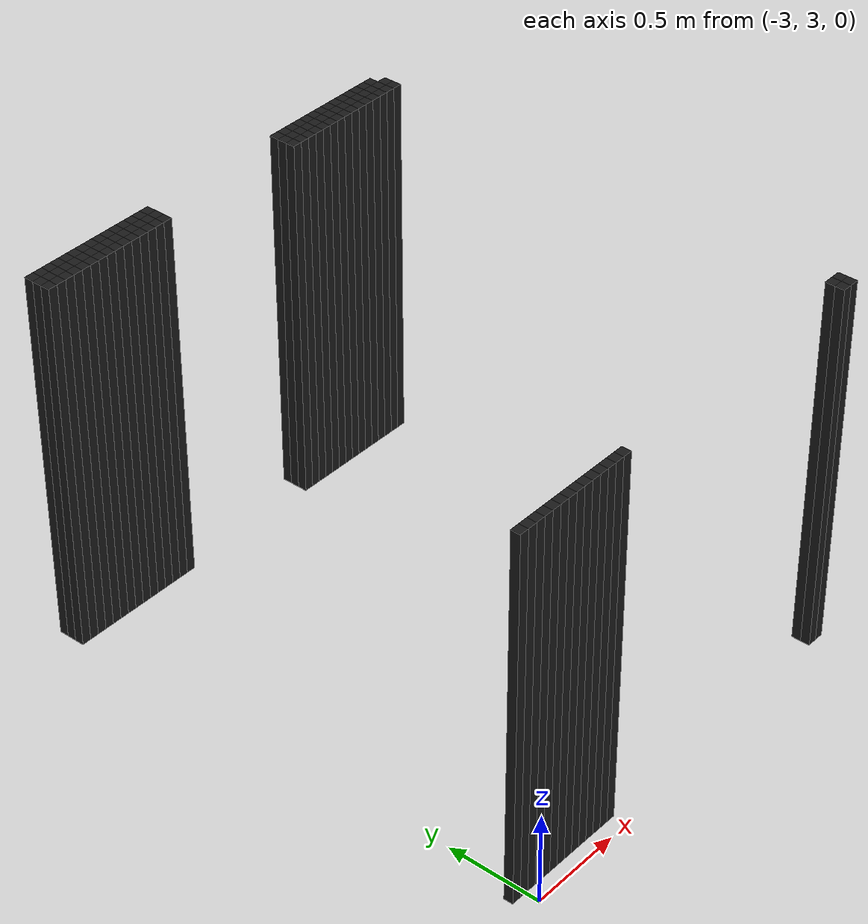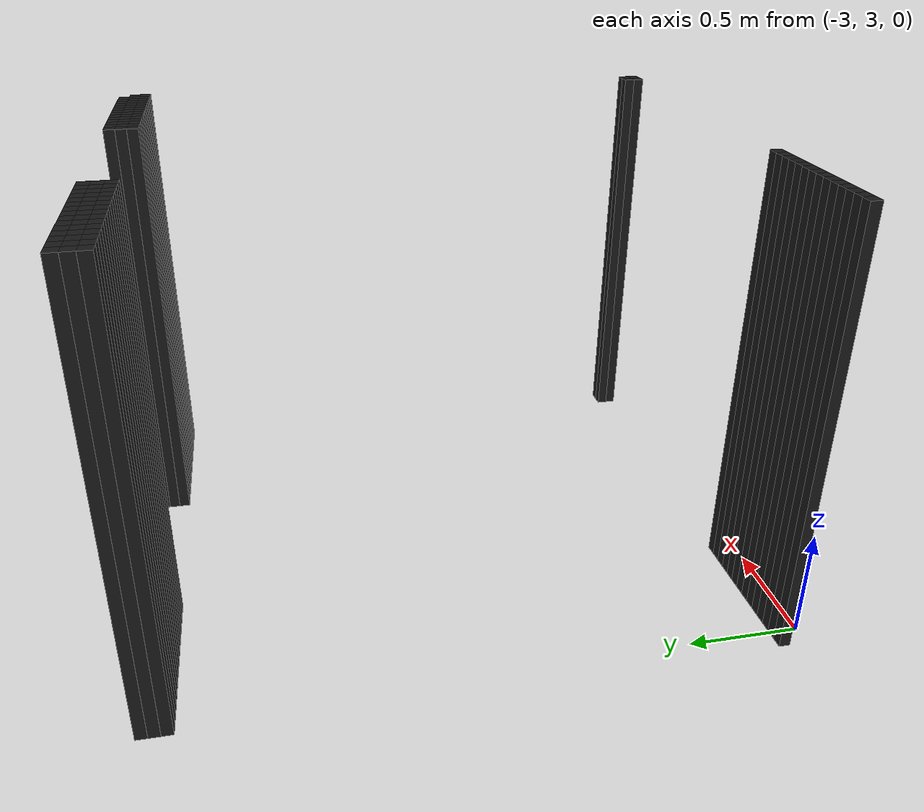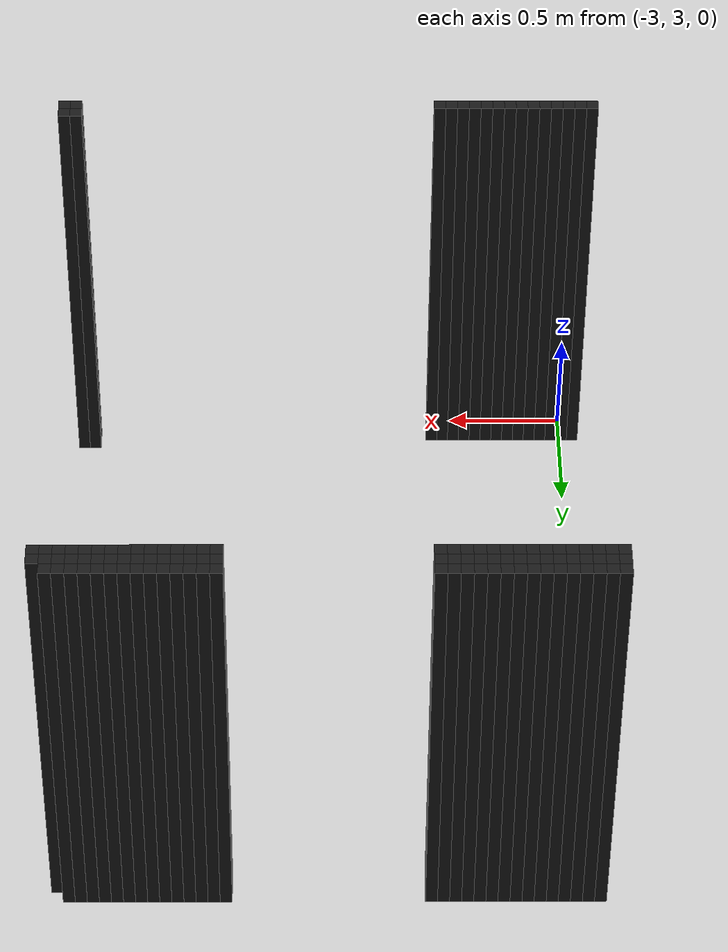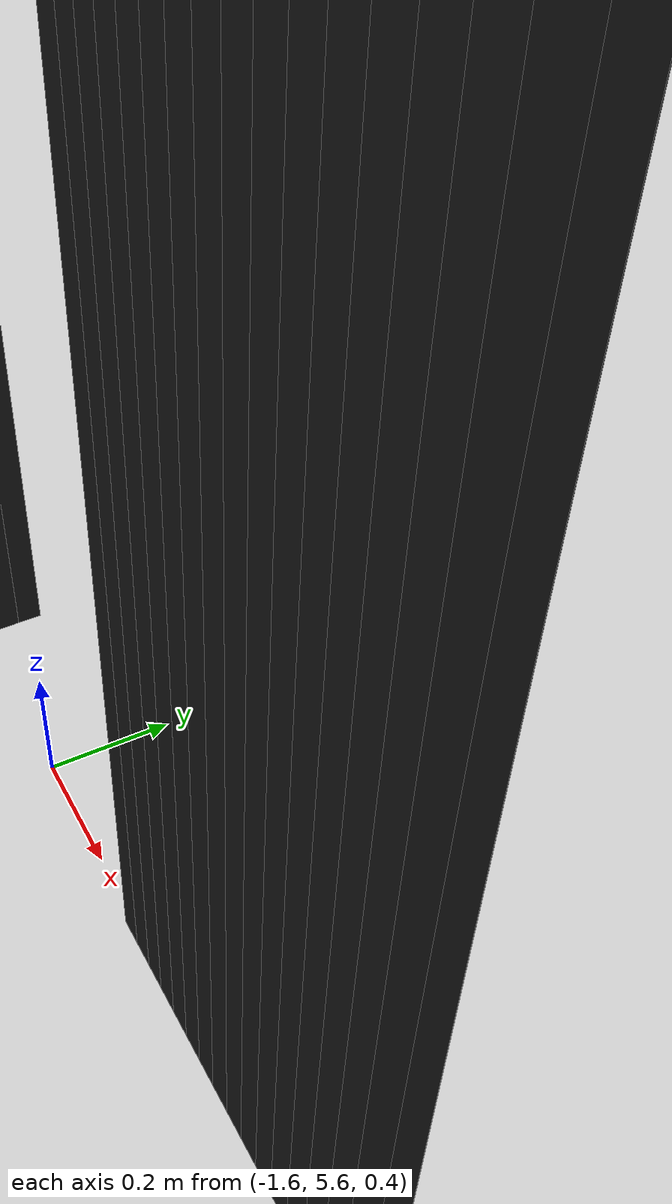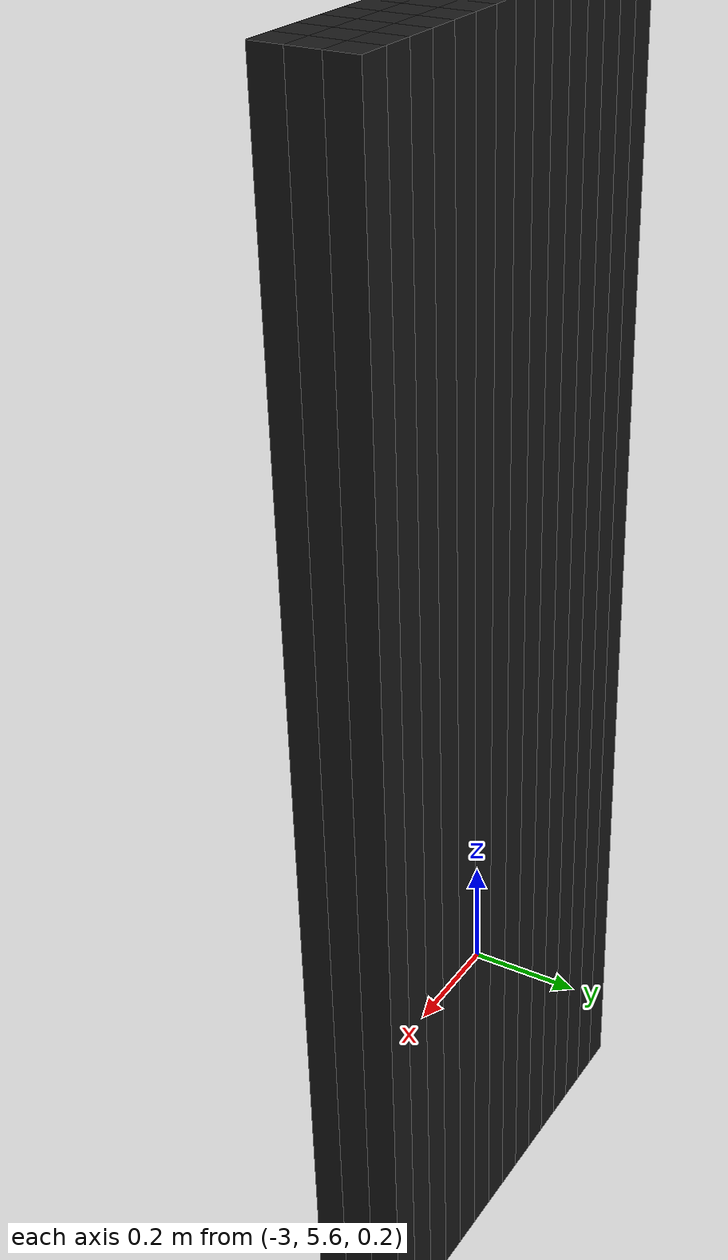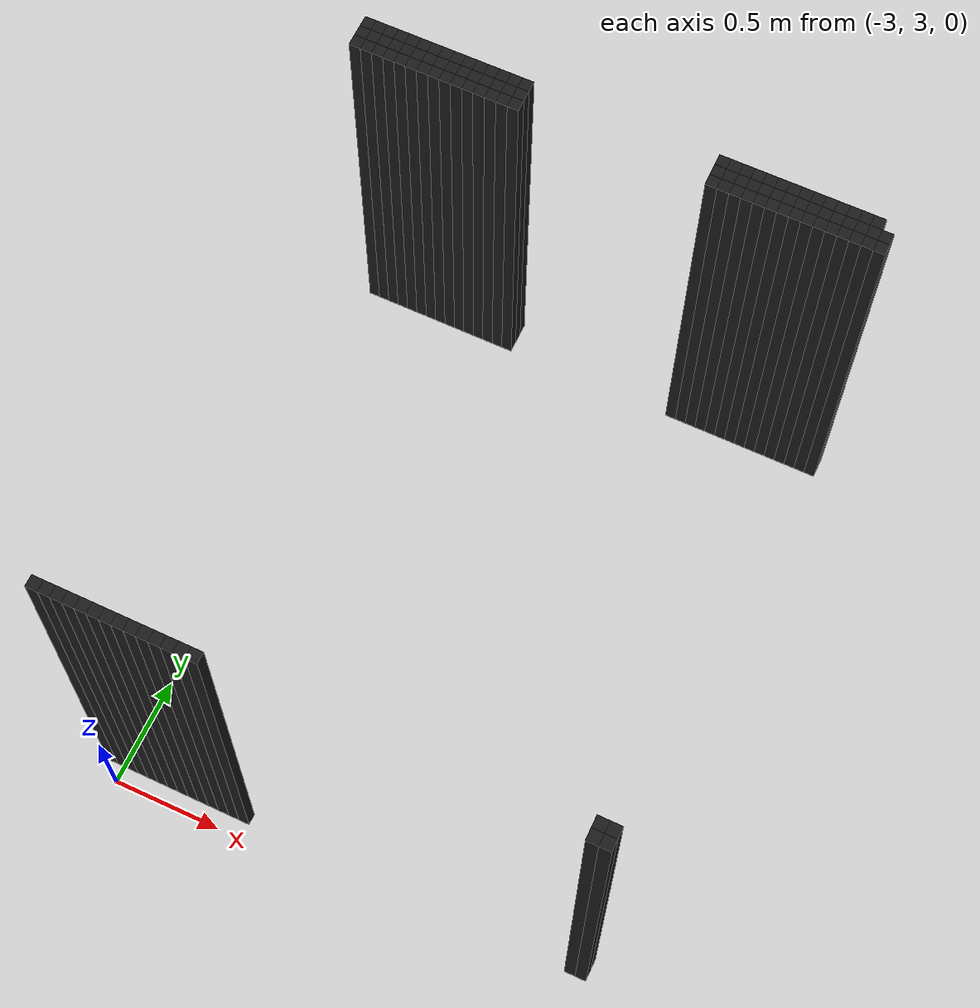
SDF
<sdf version="1.6">
 <model name="obstacle_29_51">
  <pose>-3.0599999999999996 5.8 1.0 0 0 0</pose>
  <static>true</static>
  <link name="box_link">
   <collision name="box_collision"><geometry><box><size>0.05 0.05 2.0</size></box></geometry></collision>
   <visual name="box_visual">
    <geometry><box><size>0.05 0.05 2.0</size></box></geometry>
    <material><ambient>0 0 0 1</ambient><diffuse>0.1 0.1 0.1 1</diffuse></material>
   </visual>
  </link>
 </model>
 <model name="obstacle_30_51">
  <pose>-3.01 5.8 1.0 0 0 0</pose>
  <static>true</static>
  <link name="box_link">
   <collision name="box_collision"><geometry><box><size>0.05 0.05 2.0</size></box></geometry></collision>
   <visual name="box_visual">
    <geometry><box><size>0.05 0.05 2.0</size></box></geometry>
    <material><ambient>0 0 0 1</ambient><diffuse>0.1 0.1 0.1 1</diffuse></material>
   </visual>
  </link>
 </model>
 <model name="obstacle_31_51">
  <pose>-2.96 5.8 1.0 0 0 0</pose>
  <static>true</static>
  <link name="box_link">
   <collision name="box_collision"><geometry><box><size>0.05 0.05 2.0</size></box></geometry></collision>
   <visual name="box_visual">
    <geometry><box><size>0.05 0.05 2.0</size></box></geometry>
    <material><ambient>0 0 0 1</ambient><diffuse>0.1 0.1 0.1 1</diffuse></material>
   </visual>
  </link>
 </model>
 <model name="obstacle_32_51">
  <pose>-2.9099999999999997 5.8 1.0 0 0 0</pose>
  <static>true</static>
  <link name="box_link">
   <collision name="box_collision"><geometry><box><size>0.05 0.05 2.0</size></box></geometry></collision>
   <visual name="box_visual">
    <geometry><box><size>0.05 0.05 2.0</size></box></geometry>
    <material><ambient>0 0 0 1</ambient><diffuse>0.1 0.1 0.1 1</diffuse></material>
   </visual>
  </link>
 </model>
 <model name="obstacle_33_51">
  <pose>-2.8599999999999994 5.8 1.0 0 0 0</pose>
  <static>true</static>
  <link name="box_link">
   <collision name="box_collision"><geometry><box><size>0.05 0.05 2.0</size></box></geometry></collision>
   <visual name="box_visual">
    <geometry><box><size>0.05 0.05 2.0</size></box></geometry>
    <material><ambient>0 0 0 1</ambient><diffuse>0.1 0.1 0.1 1</diffuse></material>
   </visual>
  </link>
 </model>
 <model name="obstacle_34_51">
  <pose>-2.8099999999999996 5.8 1.0 0 0 0</pose>
  <static>true</static>
  <link name="box_link">
   <collision name="box_collision"><geometry><box><size>0.05 0.05 2.0</size></box></geometry></collision>
   <visual name="box_visual">
    <geometry><box><size>0.05 0.05 2.0</size></box></geometry>
    <material><ambient>0 0 0 1</ambient><diffuse>0.1 0.1 0.1 1</diffuse></material>
   </visual>
  </link>
 </model>
 <model name="obstacle_35_51">
  <pose>-2.76 5.8 1.0 0 0 0</pose>
  <static>true</static>
  <link name="box_link">
   <collision name="box_collision"><geometry><box><size>0.05 0.05 2.0</size></box></geometry></collision>
   <visual name="box_visual">
    <geometry><box><size>0.05 0.05 2.0</size></box></geometry>
    <material><ambient>0 0 0 1</ambient><diffuse>0.1 0.1 0.1 1</diffuse></material>
   </visual>
  </link>
 </model>
 <model name="obstacle_36_51">
  <pose>-2.71 5.8 1.0 0 0 0</pose>
  <static>true</static>
  <link name="box_link">
   <collision name="box_collision"><geometry><box><size>0.05 0.05 2.0</size></box></geometry></collision>
   <visual name="box_visual">
    <geometry><box><size>0.05 0.05 2.0</size></box></geometry>
    <material><ambient>0 0 0 1</ambient><diffuse>0.1 0.1 0.1 1</diffuse></material>
   </visual>
  </link>
 </model>
 <model name="obstacle_37_51">
  <pose>-2.6599999999999997 5.8 1.0 0 0 0</pose>
  <static>true</static>
  <link name="box_link">
   <collision name="box_collision"><geometry><box><size>0.05 0.05 2.0</size></box></geometry></collision>
   <visual name="box_visual">
    <geometry><box><size>0.05 0.05 2.0</size></box></geometry>
    <material><ambient>0 0 0 1</ambient><diffuse>0.1 0.1 0.1 1</diffuse></material>
   </visual>
  </link>
 </model>
 <model name="obstacle_38_51">
  <pose>-2.6099999999999994 5.8 1.0 0 0 0</pose>
  <static>true</static>
  <link name="box_link">
   <collision name="box_collision"><geometry><box><size>0.05 0.05 2.0</size></box></geometry></collision>
   <visual name="box_visual">
    <geometry><box><size>0.05 0.05 2.0</size></box></geometry>
    <material><ambient>0 0 0 1</ambient><diffuse>0.1 0.1 0.1 1</diffuse></material>
   </visual>
  </link>
 </model>
 <model name="obstacle_39_51">
  <pose>-2.5599999999999996 5.8 1.0 0 0 0</pose>
  <static>true</static>
  <link name="box_link">
   <collision name="box_collision"><geometry><box><size>0.05 0.05 2.0</size></box></geometry></collision>
   <visual name="box_visual">
    <geometry><box><size>0.05 0.05 2.0</size></box></geometry>
    <material><ambient>0 0 0 1</ambient><diffuse>0.1 0.1 0.1 1</diffuse></material>
   </visual>
  </link>
 </model>
 <model name="obstacle_40_51">
  <pose>-2.51 5.8 1.0 0 0 0</pose>
  <static>true</static>
  <link name="box_link">
   <collision name="box_collision"><geometry><box><size>0.05 0.05 2.0</size></box></geometry></collision>
   <visual name="box_visual">
    <geometry><box><size>0.05 0.05 2.0</size></box></geometry>
    <material><ambient>0 0 0 1</ambient><diffuse>0.1 0.1 0.1 1</diffuse></material>
   </visual>
  </link>
 </model>
 <model name="obstacle_41_51">
  <pose>-2.4599999999999995 5.8 1.0 0 0 0</pose>
  <static>true</static>
  <link name="box_link">
   <collision name="box_collision"><geometry><box><size>0.05 0.05 2.0</size></box></geometry></collision>
   <visual name="box_visual">
    <geometry><box><size>0.05 0.05 2.0</size></box></geometry>
    <material><ambient>0 0 0 1</ambient><diffuse>0.1 0.1 0.1 1</diffuse></material>
   </visual>
  </link>
 </model>
 <model name="obstacle_42_51">
  <pose>-2.4099999999999997 5.8 1.0 0 0 0</pose>
  <static>true</static>
  <link name="box_link">
   <collision name="box_collision"><geometry><box><size>0.05 0.05 2.0</size></box></geometry></collision>
   <visual name="box_visual">
    <geometry><box><size>0.05 0.05 2.0</size></box></geometry>
    <material><ambient>0 0 0 1</ambient><diffuse>0.1 0.1 0.1 1</diffuse></material>
   </visual>
  </link>
 </model>
 <model name="obstacle_43_51">
  <pose>-2.36 5.8 1.0 0 0 0</pose>
  <static>true</static>
  <link name="box_link">
   <collision name="box_collision"><geometry><box><size>0.05 0.05 2.0</size></box></geometry></collision>
   <visual name="box_visual">
    <geometry><box><size>0.05 0.05 2.0</size></box></geometry>
    <material><ambient>0 0 0 1</ambient><diffuse>0.1 0.1 0.1 1</diffuse></material>
   </visual>
  </link>
 </model>
 <model name="obstacle_60_51">
  <pose>-1.5099999999999998 5.8 1.0 0 0 0</pose>
  <static>true</static>
  <link name="box_link">
   <collision name="box_collision"><geometry><box><size>0.05 0.05 2.0</size></box></geometry></collision>
   <visual name="box_visual">
    <geometry><box><size>0.05 0.05 2.0</size></box></geometry>
    <material><ambient>0 0 0 1</ambient><diffuse>0.1 0.1 0.1 1</diffuse></material>
   </visual>
  </link>
 </model>
 <model name="obstacle_61_51">
  <pose>-1.4599999999999995 5.8 1.0 0 0 0</pose>
  <static>true</static>
  <link name="box_link">
   <collision name="box_collision"><geometry><box><size>0.05 0.05 2.0</size></box></geometry></collision>
   <visual name="box_visual">
    <geometry><box><size>0.05 0.05 2.0</size></box></geometry>
    <material><ambient>0 0 0 1</ambient><diffuse>0.1 0.1 0.1 1</diffuse></material>
   </visual>
  </link>
 </model>
 <model name="obstacle_62_51">
  <pose>-1.4099999999999997 5.8 1.0 0 0 0</pose>
  <static>true</static>
  <link name="box_link">
   <collision name="box_collision"><geometry><box><size>0.05 0.05 2.0</size></box></geometry></collision>
   <visual name="box_visual">
    <geometry><box><size>0.05 0.05 2.0</size></box></geometry>
    <material><ambient>0 0 0 1</ambient><diffuse>0.1 0.1 0.1 1</diffuse></material>
   </visual>
  </link>
 </model>
 <model name="obstacle_63_51">
  <pose>-1.3599999999999994 5.8 1.0 0 0 0</pose>
  <static>true</static>
  <link name="box_link">
   <collision name="box_collision"><geometry><box><size>0.05 0.05 2.0</size></box></geometry></collision>
   <visual name="box_visual">
    <geometry><box><size>0.05 0.05 2.0</size></box></geometry>
    <material><ambient>0 0 0 1</ambient><diffuse>0.1 0.1 0.1 1</diffuse></material>
   </visual>
  </link>
 </model>
 <model name="obstacle_64_51">
  <pose>-1.3099999999999996 5.8 1.0 0 0 0</pose>
  <static>true</static>
  <link name="box_link">
   <collision name="box_collision"><geometry><box><size>0.05 0.05 2.0</size></box></geometry></collision>
   <visual name="box_visual">
    <geometry><box><size>0.05 0.05 2.0</size></box></geometry>
    <material><ambient>0 0 0 1</ambient><diffuse>0.1 0.1 0.1 1</diffuse></material>
   </visual>
  </link>
 </model>
 <model name="obstacle_65_51">
  <pose>-1.2599999999999998 5.8 1.0 0 0 0</pose>
  <static>true</static>
  <link name="box_link">
   <collision name="box_collision"><geometry><box><size>0.05 0.05 2.0</size></box></geometry></collision>
   <visual name="box_visual">
    <geometry><box><size>0.05 0.05 2.0</size></box></geometry>
    <material><ambient>0 0 0 1</ambient><diffuse>0.1 0.1 0.1 1</diffuse></material>
   </visual>
  </link>
 </model>
 <model name="obstacle_66_51">
  <pose>-1.2099999999999995 5.8 1.0 0 0 0</pose>
  <static>true</static>
  <link name="box_link">
   <collision name="box_collision"><geometry><box><size>0.05 0.05 2.0</size></box></geometry></collision>
   <visual name="box_visual">
    <geometry><box><size>0.05 0.05 2.0</size></box></geometry>
    <material><ambient>0 0 0 1</ambient><diffuse>0.1 0.1 0.1 1</diffuse></material>
   </visual>
  </link>
 </model>
 <model name="obstacle_67_51">
  <pose>-1.1599999999999997 5.8 1.0 0 0 0</pose>
  <static>true</static>
  <link name="box_link">
   <collision name="box_collision"><geometry><box><size>0.05 0.05 2.0</size></box></geometry></collision>
   <visual name="box_visual">
    <geometry><box><size>0.05 0.05 2.0</size></box></geometry>
    <material><ambient>0 0 0 1</ambient><diffuse>0.1 0.1 0.1 1</diffuse></material>
   </visual>
  </link>
 </model>
 <model name="obstacle_68_51">
  <pose>-1.1099999999999994 5.8 1.0 0 0 0</pose>
  <static>true</static>
  <link name="box_link">
   <collision name="box_collision"><geometry><box><size>0.05 0.05 2.0</size></box></geometry></collision>
   <visual name="box_visual">
    <geometry><box><size>0.05 0.05 2.0</size></box></geometry>
    <material><ambient>0 0 0 1</ambient><diffuse>0.1 0.1 0.1 1</diffuse></material>
   </visual>
  </link>
 </model>
 <model name="obstacle_69_51">
  <pose>-1.0599999999999996 5.8 1.0 0 0 0</pose>
  <static>true</static>
  <link name="box_link">
   <collision name="box_collision"><geometry><box><size>0.05 0.05 2.0</size></box></geometry></collision>
   <visual name="box_visual">
    <geometry><box><size>0.05 0.05 2.0</size></box></geometry>
    <material><ambient>0 0 0 1</ambient><diffuse>0.1 0.1 0.1 1</diffuse></material>
   </visual>
  </link>
 </model>
 <model name="obstacle_70_51">
  <pose>-1.0099999999999998 5.8 1.0 0 0 0</pose>
  <static>true</static>
  <link name="box_link">
   <collision name="box_collision"><geometry><box><size>0.05 0.05 2.0</size></box></geometry></collision>
   <visual name="box_visual">
    <geometry><box><size>0.05 0.05 2.0</size></box></geometry>
    <material><ambient>0 0 0 1</ambient><diffuse>0.1 0.1 0.1 1</diffuse></material>
   </visual>
  </link>
 </model>
 <model name="obstacle_71_51">
  <pose>-0.9599999999999995 5.8 1.0 0 0 0</pose>
  <static>true</static>
  <link name="box_link">
   <collision name="box_collision"><geometry><box><size>0.05 0.05 2.0</size></box></geometry></collision>
   <visual name="box_visual">
    <geometry><box><size>0.05 0.05 2.0</size></box></geometry>
    <material><ambient>0 0 0 1</ambient><diffuse>0.1 0.1 0.1 1</diffuse></material>
   </visual>
  </link>
 </model>
 <model name="obstacle_72_51">
  <pose>-0.9099999999999997 5.8 1.0 0 0 0</pose>
  <static>true</static>
  <link name="box_link">
   <collision name="box_collision"><geometry><box><size>0.05 0.05 2.0</size></box></geometry></collision>
   <visual name="box_visual">
    <geometry><box><size>0.05 0.05 2.0</size></box></geometry>
    <material><ambient>0 0 0 1</ambient><diffuse>0.1 0.1 0.1 1</diffuse></material>
   </visual>
  </link>
 </model>
 <model name="obstacle_73_51">
  <pose>-0.8599999999999994 5.8 1.0 0 0 0</pose>
  <static>true</static>
  <link name="box_link">
   <collision name="box_collision"><geometry><box><size>0.05 0.05 2.0</size></box></geometry></collision>
   <visual name="box_visual">
    <geometry><box><size>0.05 0.05 2.0</size></box></geometry>
    <material><ambient>0 0 0 1</ambient><diffuse>0.1 0.1 0.1 1</diffuse></material>
   </visual>
  </link>
 </model>
 <model name="obstacle_29_52">
  <pose>-3.0599999999999996 5.75 1.0 0 0 0</pose>
  <static>true</static>
  <link name="box_link">
   <collision name="box_collision"><geometry><box><size>0.05 0.05 2.0</size></box></geometry></collision>
   <visual name="box_visual">
    <geometry><box><size>0.05 0.05 2.0</size></box></geometry>
    <material><ambient>0 0 0 1</ambient><diffuse>0.1 0.1 0.1 1</diffuse></material>
   </visual>
  </link>
 </model>
 <model name="obstacle_30_52">
  <pose>-3.01 5.75 1.0 0 0 0</pose>
  <static>true</static>
  <link name="box_link">
   <collision name="box_collision"><geometry><box><size>0.05 0.05 2.0</size></box></geometry></collision>
   <visual name="box_visual">
    <geometry><box><size>0.05 0.05 2.0</size></box></geometry>
    <material><ambient>0 0 0 1</ambient><diffuse>0.1 0.1 0.1 1</diffuse></material>
   </visual>
  </link>
 </model>
 <model name="obstacle_31_52">
  <pose>-2.96 5.75 1.0 0 0 0</pose>
  <static>true</static>
  <link name="box_link">
   <collision name="box_collision"><geometry><box><size>0.05 0.05 2.0</size></box></geometry></collision>
   <visual name="box_visual">
    <geometry><box><size>0.05 0.05 2.0</size></box></geometry>
    <material><ambient>0 0 0 1</ambient><diffuse>0.1 0.1 0.1 1</diffuse></material>
   </visual>
  </link>
 </model>
 <model name="obstacle_32_52">
  <pose>-2.9099999999999997 5.75 1.0 0 0 0</pose>
  <static>true</static>
  <link name="box_link">
   <collision name="box_collision"><geometry><box><size>0.05 0.05 2.0</size></box></geometry></collision>
   <visual name="box_visual">
    <geometry><box><size>0.05 0.05 2.0</size></box></geometry>
    <material><ambient>0 0 0 1</ambient><diffuse>0.1 0.1 0.1 1</diffuse></material>
   </visual>
  </link>
 </model>
 <model name="obstacle_33_52">
  <pose>-2.8599999999999994 5.75 1.0 0 0 0</pose>
  <static>true</static>
  <link name="box_link">
   <collision name="box_collision"><geometry><box><size>0.05 0.05 2.0</size></box></geometry></collision>
   <visual name="box_visual">
    <geometry><box><size>0.05 0.05 2.0</size></box></geometry>
    <material><ambient>0 0 0 1</ambient><diffuse>0.1 0.1 0.1 1</diffuse></material>
   </visual>
  </link>
 </model>
 <model name="obstacle_34_52">
  <pose>-2.8099999999999996 5.75 1.0 0 0 0</pose>
  <static>true</static>
  <link name="box_link">
   <collision name="box_collision"><geometry><box><size>0.05 0.05 2.0</size></box></geometry></collision>
   <visual name="box_visual">
    <geometry><box><size>0.05 0.05 2.0</size></box></geometry>
    <material><ambient>0 0 0 1</ambient><diffuse>0.1 0.1 0.1 1</diffuse></material>
   </visual>
  </link>
 </model>
 <model name="obstacle_35_52">
  <pose>-2.76 5.75 1.0 0 0 0</pose>
  <static>true</static>
  <link name="box_link">
   <collision name="box_collision"><geometry><box><size>0.05 0.05 2.0</size></box></geometry></collision>
   <visual name="box_visual">
    <geometry><box><size>0.05 0.05 2.0</size></box></geometry>
    <material><ambient>0 0 0 1</ambient><diffuse>0.1 0.1 0.1 1</diffuse></material>
   </visual>
  </link>
 </model>
 <model name="obstacle_36_52">
  <pose>-2.71 5.75 1.0 0 0 0</pose>
  <static>true</static>
  <link name="box_link">
   <collision name="box_collision"><geometry><box><size>0.05 0.05 2.0</size></box></geometry></collision>
   <visual name="box_visual">
    <geometry><box><size>0.05 0.05 2.0</size></box></geometry>
    <material><ambient>0 0 0 1</ambient><diffuse>0.1 0.1 0.1 1</diffuse></material>
   </visual>
  </link>
 </model>
 <model name="obstacle_37_52">
  <pose>-2.6599999999999997 5.75 1.0 0 0 0</pose>
  <static>true</static>
  <link name="box_link">
   <collision name="box_collision"><geometry><box><size>0.05 0.05 2.0</size></box></geometry></collision>
   <visual name="box_visual">
    <geometry><box><size>0.05 0.05 2.0</size></box></geometry>
    <material><ambient>0 0 0 1</ambient><diffuse>0.1 0.1 0.1 1</diffuse></material>
   </visual>
  </link>
 </model>
 <model name="obstacle_38_52">
  <pose>-2.6099999999999994 5.75 1.0 0 0 0</pose>
  <static>true</static>
  <link name="box_link">
   <collision name="box_collision"><geometry><box><size>0.05 0.05 2.0</size></box></geometry></collision>
   <visual name="box_visual">
    <geometry><box><size>0.05 0.05 2.0</size></box></geometry>
    <material><ambient>0 0 0 1</ambient><diffuse>0.1 0.1 0.1 1</diffuse></material>
   </visual>
  </link>
 </model>
 <model name="obstacle_39_52">
  <pose>-2.5599999999999996 5.75 1.0 0 0 0</pose>
  <static>true</static>
  <link name="box_link">
   <collision name="box_collision"><geometry><box><size>0.05 0.05 2.0</size></box></geometry></collision>
   <visual name="box_visual">
    <geometry><box><size>0.05 0.05 2.0</size></box></geometry>
    <material><ambient>0 0 0 1</ambient><diffuse>0.1 0.1 0.1 1</diffuse></material>
   </visual>
  </link>
 </model>
 <model name="obstacle_40_52">
  <pose>-2.51 5.75 1.0 0 0 0</pose>
  <static>true</static>
  <link name="box_link">
   <collision name="box_collision"><geometry><box><size>0.05 0.05 2.0</size></box></geometry></collision>
   <visual name="box_visual">
    <geometry><box><size>0.05 0.05 2.0</size></box></geometry>
    <material><ambient>0 0 0 1</ambient><diffuse>0.1 0.1 0.1 1</diffuse></material>
   </visual>
  </link>
 </model>
 <model name="obstacle_41_52">
  <pose>-2.4599999999999995 5.75 1.0 0 0 0</pose>
  <static>true</static>
  <link name="box_link">
   <collision name="box_collision"><geometry><box><size>0.05 0.05 2.0</size></box></geometry></collision>
   <visual name="box_visual">
    <geometry><box><size>0.05 0.05 2.0</size></box></geometry>
    <material><ambient>0 0 0 1</ambient><diffuse>0.1 0.1 0.1 1</diffuse></material>
   </visual>
  </link>
 </model>
 <model name="obstacle_42_52">
  <pose>-2.4099999999999997 5.75 1.0 0 0 0</pose>
  <static>true</static>
  <link name="box_link">
   <collision name="box_collision"><geometry><box><size>0.05 0.05 2.0</size></box></geometry></collision>
   <visual name="box_visual">
    <geometry><box><size>0.05 0.05 2.0</size></box></geometry>
    <material><ambient>0 0 0 1</ambient><diffuse>0.1 0.1 0.1 1</diffuse></material>
   </visual>
  </link>
 </model>
 <model name="obstacle_43_52">
  <pose>-2.36 5.75 1.0 0 0 0</pose>
  <static>true</static>
  <link name="box_link">
   <collision name="box_collision"><geometry><box><size>0.05 0.05 2.0</size></box></geometry></collision>
   <visual name="box_visual">
    <geometry><box><size>0.05 0.05 2.0</size></box></geometry>
    <material><ambient>0 0 0 1</ambient><diffuse>0.1 0.1 0.1 1</diffuse></material>
   </visual>
  </link>
 </model>
 <model name="obstacle_60_52">
  <pose>-1.5099999999999998 5.75 1.0 0 0 0</pose>
  <static>true</static>
  <link name="box_link">
   <collision name="box_collision"><geometry><box><size>0.05 0.05 2.0</size></box></geometry></collision>
   <visual name="box_visual">
    <geometry><box><size>0.05 0.05 2.0</size></box></geometry>
    <material><ambient>0 0 0 1</ambient><diffuse>0.1 0.1 0.1 1</diffuse></material>
   </visual>
  </link>
 </model>
 <model name="obstacle_61_52">
  <pose>-1.4599999999999995 5.75 1.0 0 0 0</pose>
  <static>true</static>
  <link name="box_link">
   <collision name="box_collision"><geometry><box><size>0.05 0.05 2.0</size></box></geometry></collision>
   <visual name="box_visual">
    <geometry><box><size>0.05 0.05 2.0</size></box></geometry>
    <material><ambient>0 0 0 1</ambient><diffuse>0.1 0.1 0.1 1</diffuse></material>
   </visual>
  </link>
 </model>
 <model name="obstacle_62_52">
  <pose>-1.4099999999999997 5.75 1.0 0 0 0</pose>
  <static>true</static>
  <link name="box_link">
   <collision name="box_collision"><geometry><box><size>0.05 0.05 2.0</size></box></geometry></collision>
   <visual name="box_visual">
    <geometry><box><size>0.05 0.05 2.0</size></box></geometry>
    <material><ambient>0 0 0 1</ambient><diffuse>0.1 0.1 0.1 1</diffuse></material>
   </visual>
  </link>
 </model>
 <model name="obstacle_63_52">
  <pose>-1.3599999999999994 5.75 1.0 0 0 0</pose>
  <static>true</static>
  <link name="box_link">
   <collision name="box_collision"><geometry><box><size>0.05 0.05 2.0</size></box></geometry></collision>
   <visual name="box_visual">
    <geometry><box><size>0.05 0.05 2.0</size></box></geometry>
    <material><ambient>0 0 0 1</ambient><diffuse>0.1 0.1 0.1 1</diffuse></material>
   </visual>
  </link>
 </model>
 <model name="obstacle_64_52">
  <pose>-1.3099999999999996 5.75 1.0 0 0 0</pose>
  <static>true</static>
  <link name="box_link">
   <collision name="box_collision"><geometry><box><size>0.05 0.05 2.0</size></box></geometry></collision>
   <visual name="box_visual">
    <geometry><box><size>0.05 0.05 2.0</size></box></geometry>
    <material><ambient>0 0 0 1</ambient><diffuse>0.1 0.1 0.1 1</diffuse></material>
   </visual>
  </link>
 </model>
 <model name="obstacle_65_52">
  <pose>-1.2599999999999998 5.75 1.0 0 0 0</pose>
  <static>true</static>
  <link name="box_link">
   <collision name="box_collision"><geometry><box><size>0.05 0.05 2.0</size></box></geometry></collision>
   <visual name="box_visual">
    <geometry><box><size>0.05 0.05 2.0</size></box></geometry>
    <material><ambient>0 0 0 1</ambient><diffuse>0.1 0.1 0.1 1</diffuse></material>
   </visual>
  </link>
 </model>
 <model name="obstacle_66_52">
  <pose>-1.2099999999999995 5.75 1.0 0 0 0</pose>
  <static>true</static>
  <link name="box_link">
   <collision name="box_collision"><geometry><box><size>0.05 0.05 2.0</size></box></geometry></collision>
   <visual name="box_visual">
    <geometry><box><size>0.05 0.05 2.0</size></box></geometry>
    <material><ambient>0 0 0 1</ambient><diffuse>0.1 0.1 0.1 1</diffuse></material>
   </visual>
  </link>
 </model>
 <model name="obstacle_67_52">
  <pose>-1.1599999999999997 5.75 1.0 0 0 0</pose>
  <static>true</static>
  <link name="box_link">
   <collision name="box_collision"><geometry><box><size>0.05 0.05 2.0</size></box></geometry></collision>
   <visual name="box_visual">
    <geometry><box><size>0.05 0.05 2.0</size></box></geometry>
    <material><ambient>0 0 0 1</ambient><diffuse>0.1 0.1 0.1 1</diffuse></material>
   </visual>
  </link>
 </model>
 <model name="obstacle_68_52">
  <pose>-1.1099999999999994 5.75 1.0 0 0 0</pose>
  <static>true</static>
  <link name="box_link">
   <collision name="box_collision"><geometry><box><size>0.05 0.05 2.0</size></box></geometry></collision>
   <visual name="box_visual">
    <geometry><box><size>0.05 0.05 2.0</size></box></geometry>
    <material><ambient>0 0 0 1</ambient><diffuse>0.1 0.1 0.1 1</diffuse></material>
   </visual>
  </link>
 </model>
 <model name="obstacle_69_52">
  <pose>-1.0599999999999996 5.75 1.0 0 0 0</pose>
  <static>true</static>
  <link name="box_link">
   <collision name="box_collision"><geometry><box><size>0.05 0.05 2.0</size></box></geometry></collision>
   <visual name="box_visual">
    <geometry><box><size>0.05 0.05 2.0</size></box></geometry>
    <material><ambient>0 0 0 1</ambient><diffuse>0.1 0.1 0.1 1</diffuse></material>
   </visual>
  </link>
 </model>
 <model name="obstacle_70_52">
  <pose>-1.0099999999999998 5.75 1.0 0 0 0</pose>
  <static>true</static>
  <link name="box_link">
   <collision name="box_collision"><geometry><box><size>0.05 0.05 2.0</size></box></geometry></collision>
   <visual name="box_visual">
    <geometry><box><size>0.05 0.05 2.0</size></box></geometry>
    <material><ambient>0 0 0 1</ambient><diffuse>0.1 0.1 0.1 1</diffuse></material>
   </visual>
  </link>
 </model>
 <model name="obstacle_71_52">
  <pose>-0.9599999999999995 5.75 1.0 0 0 0</pose>
  <static>true</static>
  <link name="box_link">
   <collision name="box_collision"><geometry><box><size>0.05 0.05 2.0</size></box></geometry></collision>
   <visual name="box_visual">
    <geometry><box><size>0.05 0.05 2.0</size></box></geometry>
    <material><ambient>0 0 0 1</ambient><diffuse>0.1 0.1 0.1 1</diffuse></material>
   </visual>
  </link>
 </model>
 <model name="obstacle_72_52">
  <pose>-0.9099999999999997 5.75 1.0 0 0 0</pose>
  <static>true</static>
  <link name="box_link">
   <collision name="box_collision"><geometry><box><size>0.05 0.05 2.0</size></box></geometry></collision>
   <visual name="box_visual">
    <geometry><box><size>0.05 0.05 2.0</size></box></geometry>
    <material><ambient>0 0 0 1</ambient><diffuse>0.1 0.1 0.1 1</diffuse></material>
   </visual>
  </link>
 </model>
 <model name="obstacle_73_52">
  <pose>-0.8599999999999994 5.75 1.0 0 0 0</pose>
  <static>true</static>
  <link name="box_link">
   <collision name="box_collision"><geometry><box><size>0.05 0.05 2.0</size></box></geometry></collision>
   <visual name="box_visual">
    <geometry><box><size>0.05 0.05 2.0</size></box></geometry>
    <material><ambient>0 0 0 1</ambient><diffuse>0.1 0.1 0.1 1</diffuse></material>
   </visual>
  </link>
 </model>
 <model name="obstacle_74_52">
  <pose>-0.8099999999999996 5.75 1.0 0 0 0</pose>
  <static>true</static>
  <link name="box_link">
   <collision name="box_collision"><geometry><box><size>0.05 0.05 2.0</size></box></geometry></collision>
   <visual name="box_visual">
    <geometry><box><size>0.05 0.05 2.0</size></box></geometry>
    <material><ambient>0 0 0 1</ambient><diffuse>0.1 0.1 0.1 1</diffuse></material>
   </visual>
  </link>
 </model>
 <model name="obstacle_29_53">
  <pose>-3.0599999999999996 5.7 1.0 0 0 0</pose>
  <static>true</static>
  <link name="box_link">
   <collision name="box_collision"><geometry><box><size>0.05 0.05 2.0</size></box></geometry></collision>
   <visual name="box_visual">
    <geometry><box><size>0.05 0.05 2.0</size></box></geometry>
    <material><ambient>0 0 0 1</ambient><diffuse>0.1 0.1 0.1 1</diffuse></material>
   </visual>
  </link>
 </model>
 <model name="obstacle_30_53">
  <pose>-3.01 5.7 1.0 0 0 0</pose>
  <static>true</static>
  <link name="box_link">
   <collision name="box_collision"><geometry><box><size>0.05 0.05 2.0</size></box></geometry></collision>
   <visual name="box_visual">
    <geometry><box><size>0.05 0.05 2.0</size></box></geometry>
    <material><ambient>0 0 0 1</ambient><diffuse>0.1 0.1 0.1 1</diffuse></material>
   </visual>
  </link>
 </model>
 <model name="obstacle_31_53">
  <pose>-2.96 5.7 1.0 0 0 0</pose>
  <static>true</static>
  <link name="box_link">
   <collision name="box_collision"><geometry><box><size>0.05 0.05 2.0</size></box></geometry></collision>
   <visual name="box_visual">
    <geometry><box><size>0.05 0.05 2.0</size></box></geometry>
    <material><ambient>0 0 0 1</ambient><diffuse>0.1 0.1 0.1 1</diffuse></material>
   </visual>
  </link>
 </model>
 <model name="obstacle_32_53">
  <pose>-2.9099999999999997 5.7 1.0 0 0 0</pose>
  <static>true</static>
  <link name="box_link">
   <collision name="box_collision"><geometry><box><size>0.05 0.05 2.0</size></box></geometry></collision>
   <visual name="box_visual">
    <geometry><box><size>0.05 0.05 2.0</size></box></geometry>
    <material><ambient>0 0 0 1</ambient><diffuse>0.1 0.1 0.1 1</diffuse></material>
   </visual>
  </link>
 </model>
 <model name="obstacle_33_53">
  <pose>-2.8599999999999994 5.7 1.0 0 0 0</pose>
  <static>true</static>
  <link name="box_link">
   <collision name="box_collision"><geometry><box><size>0.05 0.05 2.0</size></box></geometry></collision>
   <visual name="box_visual">
    <geometry><box><size>0.05 0.05 2.0</size></box></geometry>
    <material><ambient>0 0 0 1</ambient><diffuse>0.1 0.1 0.1 1</diffuse></material>
   </visual>
  </link>
 </model>
 <model name="obstacle_34_53">
  <pose>-2.8099999999999996 5.7 1.0 0 0 0</pose>
  <static>true</static>
  <link name="box_link">
   <collision name="box_collision"><geometry><box><size>0.05 0.05 2.0</size></box></geometry></collision>
   <visual name="box_visual">
    <geometry><box><size>0.05 0.05 2.0</size></box></geometry>
    <material><ambient>0 0 0 1</ambient><diffuse>0.1 0.1 0.1 1</diffuse></material>
   </visual>
  </link>
 </model>
 <model name="obstacle_35_53">
  <pose>-2.76 5.7 1.0 0 0 0</pose>
  <static>true</static>
  <link name="box_link">
   <collision name="box_collision"><geometry><box><size>0.05 0.05 2.0</size></box></geometry></collision>
   <visual name="box_visual">
    <geometry><box><size>0.05 0.05 2.0</size></box></geometry>
    <material><ambient>0 0 0 1</ambient><diffuse>0.1 0.1 0.1 1</diffuse></material>
   </visual>
  </link>
 </model>
 <model name="obstacle_36_53">
  <pose>-2.71 5.7 1.0 0 0 0</pose>
  <static>true</static>
  <link name="box_link">
   <collision name="box_collision"><geometry><box><size>0.05 0.05 2.0</size></box></geometry></collision>
   <visual name="box_visual">
    <geometry><box><size>0.05 0.05 2.0</size></box></geometry>
    <material><ambient>0 0 0 1</ambient><diffuse>0.1 0.1 0.1 1</diffuse></material>
   </visual>
  </link>
 </model>
 <model name="obstacle_37_53">
  <pose>-2.6599999999999997 5.7 1.0 0 0 0</pose>
  <static>true</static>
  <link name="box_link">
   <collision name="box_collision"><geometry><box><size>0.05 0.05 2.0</size></box></geometry></collision>
   <visual name="box_visual">
    <geometry><box><size>0.05 0.05 2.0</size></box></geometry>
    <material><ambient>0 0 0 1</ambient><diffuse>0.1 0.1 0.1 1</diffuse></material>
   </visual>
  </link>
 </model>
 <model name="obstacle_38_53">
  <pose>-2.6099999999999994 5.7 1.0 0 0 0</pose>
  <static>true</static>
  <link name="box_link">
   <collision name="box_collision"><geometry><box><size>0.05 0.05 2.0</size></box></geometry></collision>
   <visual name="box_visual">
    <geometry><box><size>0.05 0.05 2.0</size></box></geometry>
    <material><ambient>0 0 0 1</ambient><diffuse>0.1 0.1 0.1 1</diffuse></material>
   </visual>
  </link>
 </model>
 <model name="obstacle_39_53">
  <pose>-2.5599999999999996 5.7 1.0 0 0 0</pose>
  <static>true</static>
  <link name="box_link">
   <collision name="box_collision"><geometry><box><size>0.05 0.05 2.0</size></box></geometry></collision>
   <visual name="box_visual">
    <geometry><box><size>0.05 0.05 2.0</size></box></geometry>
    <material><ambient>0 0 0 1</ambient><diffuse>0.1 0.1 0.1 1</diffuse></material>
   </visual>
  </link>
 </model>
 <model name="obstacle_40_53">
  <pose>-2.51 5.7 1.0 0 0 0</pose>
  <static>true</static>
  <link name="box_link">
   <collision name="box_collision"><geometry><box><size>0.05 0.05 2.0</size></box></geometry></collision>
   <visual name="box_visual">
    <geometry><box><size>0.05 0.05 2.0</size></box></geometry>
    <material><ambient>0 0 0 1</ambient><diffuse>0.1 0.1 0.1 1</diffuse></material>
   </visual>
  </link>
 </model>
 <model name="obstacle_41_53">
  <pose>-2.4599999999999995 5.7 1.0 0 0 0</pose>
  <static>true</static>
  <link name="box_link">
   <collision name="box_collision"><geometry><box><size>0.05 0.05 2.0</size></box></geometry></collision>
   <visual name="box_visual">
    <geometry><box><size>0.05 0.05 2.0</size></box></geometry>
    <material><ambient>0 0 0 1</ambient><diffuse>0.1 0.1 0.1 1</diffuse></material>
   </visual>
  </link>
 </model>
 <model name="obstacle_42_53">
  <pose>-2.4099999999999997 5.7 1.0 0 0 0</pose>
  <static>true</static>
  <link name="box_link">
   <collision name="box_collision"><geometry><box><size>0.05 0.05 2.0</size></box></geometry></collision>
   <visual name="box_visual">
    <geometry><box><size>0.05 0.05 2.0</size></box></geometry>
    <material><ambient>0 0 0 1</ambient><diffuse>0.1 0.1 0.1 1</diffuse></material>
   </visual>
  </link>
 </model>
 <model name="obstacle_43_53">
  <pose>-2.36 5.7 1.0 0 0 0</pose>
  <static>true</static>
  <link name="box_link">
   <collision name="box_collision"><geometry><box><size>0.05 0.05 2.0</size></box></geometry></collision>
   <visual name="box_visual">
    <geometry><box><size>0.05 0.05 2.0</size></box></geometry>
    <material><ambient>0 0 0 1</ambient><diffuse>0.1 0.1 0.1 1</diffuse></material>
   </visual>
  </link>
 </model>
 <model name="obstacle_60_53">
  <pose>-1.5099999999999998 5.7 1.0 0 0 0</pose>
  <static>true</static>
  <link name="box_link">
   <collision name="box_collision"><geometry><box><size>0.05 0.05 2.0</size></box></geometry></collision>
   <visual name="box_visual">
    <geometry><box><size>0.05 0.05 2.0</size></box></geometry>
    <material><ambient>0 0 0 1</ambient><diffuse>0.1 0.1 0.1 1</diffuse></material>
   </visual>
  </link>
 </model>
 <model name="obstacle_61_53">
  <pose>-1.4599999999999995 5.7 1.0 0 0 0</pose>
  <static>true</static>
  <link name="box_link">
   <collision name="box_collision"><geometry><box><size>0.05 0.05 2.0</size></box></geometry></collision>
   <visual name="box_visual">
    <geometry><box><size>0.05 0.05 2.0</size></box></geometry>
    <material><ambient>0 0 0 1</ambient><diffuse>0.1 0.1 0.1 1</diffuse></material>
   </visual>
  </link>
 </model>
 <model name="obstacle_62_53">
  <pose>-1.4099999999999997 5.7 1.0 0 0 0</pose>
  <static>true</static>
  <link name="box_link">
   <collision name="box_collision"><geometry><box><size>0.05 0.05 2.0</size></box></geometry></collision>
   <visual name="box_visual">
    <geometry><box><size>0.05 0.05 2.0</size></box></geometry>
    <material><ambient>0 0 0 1</ambient><diffuse>0.1 0.1 0.1 1</diffuse></material>
   </visual>
  </link>
 </model>
 <model name="obstacle_63_53">
  <pose>-1.3599999999999994 5.7 1.0 0 0 0</pose>
  <static>true</static>
  <link name="box_link">
   <collision name="box_collision"><geometry><box><size>0.05 0.05 2.0</size></box></geometry></collision>
   <visual name="box_visual">
    <geometry><box><size>0.05 0.05 2.0</size></box></geometry>
    <material><ambient>0 0 0 1</ambient><diffuse>0.1 0.1 0.1 1</diffuse></material>
   </visual>
  </link>
 </model>
 <model name="obstacle_64_53">
  <pose>-1.3099999999999996 5.7 1.0 0 0 0</pose>
  <static>true</static>
  <link name="box_link">
   <collision name="box_collision"><geometry><box><size>0.05 0.05 2.0</size></box></geometry></collision>
   <visual name="box_visual">
    <geometry><box><size>0.05 0.05 2.0</size></box></geometry>
    <material><ambient>0 0 0 1</ambient><diffuse>0.1 0.1 0.1 1</diffuse></material>
   </visual>
  </link>
 </model>
 <model name="obstacle_65_53">
  <pose>-1.2599999999999998 5.7 1.0 0 0 0</pose>
  <static>true</static>
  <link name="box_link">
   <collision name="box_collision"><geometry><box><size>0.05 0.05 2.0</size></box></geometry></collision>
   <visual name="box_visual">
    <geometry><box><size>0.05 0.05 2.0</size></box></geometry>
    <material><ambient>0 0 0 1</ambient><diffuse>0.1 0.1 0.1 1</diffuse></material>
   </visual>
  </link>
 </model>
 <model name="obstacle_66_53">
  <pose>-1.2099999999999995 5.7 1.0 0 0 0</pose>
  <static>true</static>
  <link name="box_link">
   <collision name="box_collision"><geometry><box><size>0.05 0.05 2.0</size></box></geometry></collision>
   <visual name="box_visual">
    <geometry><box><size>0.05 0.05 2.0</size></box></geometry>
    <material><ambient>0 0 0 1</ambient><diffuse>0.1 0.1 0.1 1</diffuse></material>
   </visual>
  </link>
 </model>
 <model name="obstacle_67_53">
  <pose>-1.1599999999999997 5.7 1.0 0 0 0</pose>
  <static>true</static>
  <link name="box_link">
   <collision name="box_collision"><geometry><box><size>0.05 0.05 2.0</size></box></geometry></collision>
   <visual name="box_visual">
    <geometry><box><size>0.05 0.05 2.0</size></box></geometry>
    <material><ambient>0 0 0 1</ambient><diffuse>0.1 0.1 0.1 1</diffuse></material>
   </visual>
  </link>
 </model>
 <model name="obstacle_68_53">
  <pose>-1.1099999999999994 5.7 1.0 0 0 0</pose>
  <static>true</static>
  <link name="box_link">
   <collision name="box_collision"><geometry><box><size>0.05 0.05 2.0</size></box></geometry></collision>
   <visual name="box_visual">
    <geometry><box><size>0.05 0.05 2.0</size></box></geometry>
    <material><ambient>0 0 0 1</ambient><diffuse>0.1 0.1 0.1 1</diffuse></material>
   </visual>
  </link>
 </model>
 <model name="obstacle_69_53">
  <pose>-1.0599999999999996 5.7 1.0 0 0 0</pose>
  <static>true</static>
  <link name="box_link">
   <collision name="box_collision"><geometry><box><size>0.05 0.05 2.0</size></box></geometry></collision>
   <visual name="box_visual">
    <geometry><box><size>0.05 0.05 2.0</size></box></geometry>
    <material><ambient>0 0 0 1</ambient><diffuse>0.1 0.1 0.1 1</diffuse></material>
   </visual>
  </link>
 </model>
 <model name="obstacle_70_53">
  <pose>-1.0099999999999998 5.7 1.0 0 0 0</pose>
  <static>true</static>
  <link name="box_link">
   <collision name="box_collision"><geometry><box><size>0.05 0.05 2.0</size></box></geometry></collision>
   <visual name="box_visual">
    <geometry><box><size>0.05 0.05 2.0</size></box></geometry>
    <material><ambient>0 0 0 1</ambient><diffuse>0.1 0.1 0.1 1</diffuse></material>
   </visual>
  </link>
 </model>
 <model name="obstacle_71_53">
  <pose>-0.9599999999999995 5.7 1.0 0 0 0</pose>
  <static>true</static>
  <link name="box_link">
   <collision name="box_collision"><geometry><box><size>0.05 0.05 2.0</size></box></geometry></collision>
   <visual name="box_visual">
    <geometry><box><size>0.05 0.05 2.0</size></box></geometry>
    <material><ambient>0 0 0 1</ambient><diffuse>0.1 0.1 0.1 1</diffuse></material>
   </visual>
  </link>
 </model>
 <model name="obstacle_72_53">
  <pose>-0.9099999999999997 5.7 1.0 0 0 0</pose>
  <static>true</static>
  <link name="box_link">
   <collision name="box_collision"><geometry><box><size>0.05 0.05 2.0</size></box></geometry></collision>
   <visual name="box_visual">
    <geometry><box><size>0.05 0.05 2.0</size></box></geometry>
    <material><ambient>0 0 0 1</ambient><diffuse>0.1 0.1 0.1 1</diffuse></material>
   </visual>
  </link>
 </model>
 <model name="obstacle_73_53">
  <pose>-0.8599999999999994 5.7 1.0 0 0 0</pose>
  <static>true</static>
  <link name="box_link">
   <collision name="box_collision"><geometry><box><size>0.05 0.05 2.0</size></box></geometry></collision>
   <visual name="box_visual">
    <geometry><box><size>0.05 0.05 2.0</size></box></geometry>
    <material><ambient>0 0 0 1</ambient><diffuse>0.1 0.1 0.1 1</diffuse></material>
   </visual>
  </link>
 </model>
 <model name="obstacle_74_53">
  <pose>-0.8099999999999996 5.7 1.0 0 0 0</pose>
  <static>true</static>
  <link name="box_link">
   <collision name="box_collision"><geometry><box><size>0.05 0.05 2.0</size></box></geometry></collision>
   <visual name="box_visual">
    <geometry><box><size>0.05 0.05 2.0</size></box></geometry>
    <material><ambient>0 0 0 1</ambient><diffuse>0.1 0.1 0.1 1</diffuse></material>
   </visual>
  </link>
 </model>
 <model name="obstacle_73_104">
  <pose>-0.8599999999999994 3.1500000000000004 1.0 0 0 0</pose>
  <static>true</static>
  <link name="box_link">
   <collision name="box_collision"><geometry><box><size>0.05 0.05 2.0</size></box></geometry></collision>
   <visual name="box_visual">
    <geometry><box><size>0.05 0.05 2.0</size></box></geometry>
    <material><ambient>0 0 0 1</ambient><diffuse>0.1 0.1 0.1 1</diffuse></material>
   </visual>
  </link>
 </model>
 <model name="obstacle_74_104">
  <pose>-0.8099999999999996 3.1500000000000004 1.0 0 0 0</pose>
  <static>true</static>
  <link name="box_link">
   <collision name="box_collision"><geometry><box><size>0.05 0.05 2.0</size></box></geometry></collision>
   <visual name="box_visual">
    <geometry><box><size>0.05 0.05 2.0</size></box></geometry>
    <material><ambient>0 0 0 1</ambient><diffuse>0.1 0.1 0.1 1</diffuse></material>
   </visual>
  </link>
 </model>
 <model name="obstacle_29_105">
  <pose>-3.0599999999999996 3.1000000000000005 1.0 0 0 0</pose>
  <static>true</static>
  <link name="box_link">
   <collision name="box_collision"><geometry><box><size>0.05 0.05 2.0</size></box></geometry></collision>
   <visual name="box_visual">
    <geometry><box><size>0.05 0.05 2.0</size></box></geometry>
    <material><ambient>0 0 0 1</ambient><diffuse>0.1 0.1 0.1 1</diffuse></material>
   </visual>
  </link>
 </model>
 <model name="obstacle_30_105">
  <pose>-3.01 3.1000000000000005 1.0 0 0 0</pose>
  <static>true</static>
  <link name="box_link">
   <collision name="box_collision"><geometry><box><size>0.05 0.05 2.0</size></box></geometry></collision>
   <visual name="box_visual">
    <geometry><box><size>0.05 0.05 2.0</size></box></geometry>
    <material><ambient>0 0 0 1</ambient><diffuse>0.1 0.1 0.1 1</diffuse></material>
   </visual>
  </link>
 </model>
 <model name="obstacle_31_105">
  <pose>-2.96 3.1000000000000005 1.0 0 0 0</pose>
  <static>true</static>
  <link name="box_link">
   <collision name="box_collision"><geometry><box><size>0.05 0.05 2.0</size></box></geometry></collision>
   <visual name="box_visual">
    <geometry><box><size>0.05 0.05 2.0</size></box></geometry>
    <material><ambient>0 0 0 1</ambient><diffuse>0.1 0.1 0.1 1</diffuse></material>
   </visual>
  </link>
 </model>
 <model name="obstacle_32_105">
  <pose>-2.9099999999999997 3.1000000000000005 1.0 0 0 0</pose>
  <static>true</static>
  <link name="box_link">
   <collision name="box_collision"><geometry><box><size>0.05 0.05 2.0</size></box></geometry></collision>
   <visual name="box_visual">
    <geometry><box><size>0.05 0.05 2.0</size></box></geometry>
    <material><ambient>0 0 0 1</ambient><diffuse>0.1 0.1 0.1 1</diffuse></material>
   </visual>
  </link>
 </model>
 <model name="obstacle_33_105">
  <pose>-2.8599999999999994 3.1000000000000005 1.0 0 0 0</pose>
  <static>true</static>
  <link name="box_link">
   <collision name="box_collision"><geometry><box><size>0.05 0.05 2.0</size></box></geometry></collision>
   <visual name="box_visual">
    <geometry><box><size>0.05 0.05 2.0</size></box></geometry>
    <material><ambient>0 0 0 1</ambient><diffuse>0.1 0.1 0.1 1</diffuse></material>
   </visual>
  </link>
 </model>
 <model name="obstacle_34_105">
  <pose>-2.8099999999999996 3.1000000000000005 1.0 0 0 0</pose>
  <static>true</static>
  <link name="box_link">
   <collision name="box_collision"><geometry><box><size>0.05 0.05 2.0</size></box></geometry></collision>
   <visual name="box_visual">
    <geometry><box><size>0.05 0.05 2.0</size></box></geometry>
    <material><ambient>0 0 0 1</ambient><diffuse>0.1 0.1 0.1 1</diffuse></material>
   </visual>
  </link>
 </model>
 <model name="obstacle_35_105">
  <pose>-2.76 3.1000000000000005 1.0 0 0 0</pose>
  <static>true</static>
  <link name="box_link">
   <collision name="box_collision"><geometry><box><size>0.05 0.05 2.0</size></box></geometry></collision>
   <visual name="box_visual">
    <geometry><box><size>0.05 0.05 2.0</size></box></geometry>
    <material><ambient>0 0 0 1</ambient><diffuse>0.1 0.1 0.1 1</diffuse></material>
   </visual>
  </link>
 </model>
 <model name="obstacle_36_105">
  <pose>-2.71 3.1000000000000005 1.0 0 0 0</pose>
  <static>true</static>
  <link name="box_link">
   <collision name="box_collision"><geometry><box><size>0.05 0.05 2.0</size></box></geometry></collision>
   <visual name="box_visual">
    <geometry><box><size>0.05 0.05 2.0</size></box></geometry>
    <material><ambient>0 0 0 1</ambient><diffuse>0.1 0.1 0.1 1</diffuse></material>
   </visual>
  </link>
 </model>
 <model name="obstacle_37_105">
  <pose>-2.6599999999999997 3.1000000000000005 1.0 0 0 0</pose>
  <static>true</static>
  <link name="box_link">
   <collision name="box_collision"><geometry><box><size>0.05 0.05 2.0</size></box></geometry></collision>
   <visual name="box_visual">
    <geometry><box><size>0.05 0.05 2.0</size></box></geometry>
    <material><ambient>0 0 0 1</ambient><diffuse>0.1 0.1 0.1 1</diffuse></material>
   </visual>
  </link>
 </model>
 <model name="obstacle_38_105">
  <pose>-2.6099999999999994 3.1000000000000005 1.0 0 0 0</pose>
  <static>true</static>
  <link name="box_link">
   <collision name="box_collision"><geometry><box><size>0.05 0.05 2.0</size></box></geometry></collision>
   <visual name="box_visual">
    <geometry><box><size>0.05 0.05 2.0</size></box></geometry>
    <material><ambient>0 0 0 1</ambient><diffuse>0.1 0.1 0.1 1</diffuse></material>
   </visual>
  </link>
 </model>
 <model name="obstacle_39_105">
  <pose>-2.5599999999999996 3.1000000000000005 1.0 0 0 0</pose>
  <static>true</static>
  <link name="box_link">
   <collision name="box_collision"><geometry><box><size>0.05 0.05 2.0</size></box></geometry></collision>
   <visual name="box_visual">
    <geometry><box><size>0.05 0.05 2.0</size></box></geometry>
    <material><ambient>0 0 0 1</ambient><diffuse>0.1 0.1 0.1 1</diffuse></material>
   </visual>
  </link>
 </model>
 <model name="obstacle_40_105">
  <pose>-2.51 3.1000000000000005 1.0 0 0 0</pose>
  <static>true</static>
  <link name="box_link">
   <collision name="box_collision"><geometry><box><size>0.05 0.05 2.0</size></box></geometry></collision>
   <visual name="box_visual">
    <geometry><box><size>0.05 0.05 2.0</size></box></geometry>
    <material><ambient>0 0 0 1</ambient><diffuse>0.1 0.1 0.1 1</diffuse></material>
   </visual>
  </link>
 </model>
 <model name="obstacle_41_105">
  <pose>-2.4599999999999995 3.1000000000000005 1.0 0 0 0</pose>
  <static>true</static>
  <link name="box_link">
   <collision name="box_collision"><geometry><box><size>0.05 0.05 2.0</size></box></geometry></collision>
   <visual name="box_visual">
    <geometry><box><size>0.05 0.05 2.0</size></box></geometry>
    <material><ambient>0 0 0 1</ambient><diffuse>0.1 0.1 0.1 1</diffuse></material>
   </visual>
  </link>
 </model>
 <model name="obstacle_42_105">
  <pose>-2.4099999999999997 3.1000000000000005 1.0 0 0 0</pose>
  <static>true</static>
  <link name="box_link">
   <collision name="box_collision"><geometry><box><size>0.05 0.05 2.0</size></box></geometry></collision>
   <visual name="box_visual">
    <geometry><box><size>0.05 0.05 2.0</size></box></geometry>
    <material><ambient>0 0 0 1</ambient><diffuse>0.1 0.1 0.1 1</diffuse></material>
   </visual>
  </link>
 </model>
 <model name="obstacle_73_105">
  <pose>-0.8599999999999994 3.1000000000000005 1.0 0 0 0</pose>
  <static>true</static>
  <link name="box_link">
   <collision name="box_collision"><geometry><box><size>0.05 0.05 2.0</size></box></geometry></collision>
   <visual name="box_visual">
    <geometry><box><size>0.05 0.05 2.0</size></box></geometry>
    <material><ambient>0 0 0 1</ambient><diffuse>0.1 0.1 0.1 1</diffuse></material>
   </visual>
  </link>
 </model>
 <model name="obstacle_74_105">
  <pose>-0.8099999999999996 3.1000000000000005 1.0 0 0 0</pose>
  <static>true</static>
  <link name="box_link">
   <collision name="box_collision"><geometry><box><size>0.05 0.05 2.0</size></box></geometry></collision>
   <visual name="box_visual">
    <geometry><box><size>0.05 0.05 2.0</size></box></geometry>
    <material><ambient>0 0 0 1</ambient><diffuse>0.1 0.1 0.1 1</diffuse></material>
   </visual>
  </link>
 </model>
</sdf>
